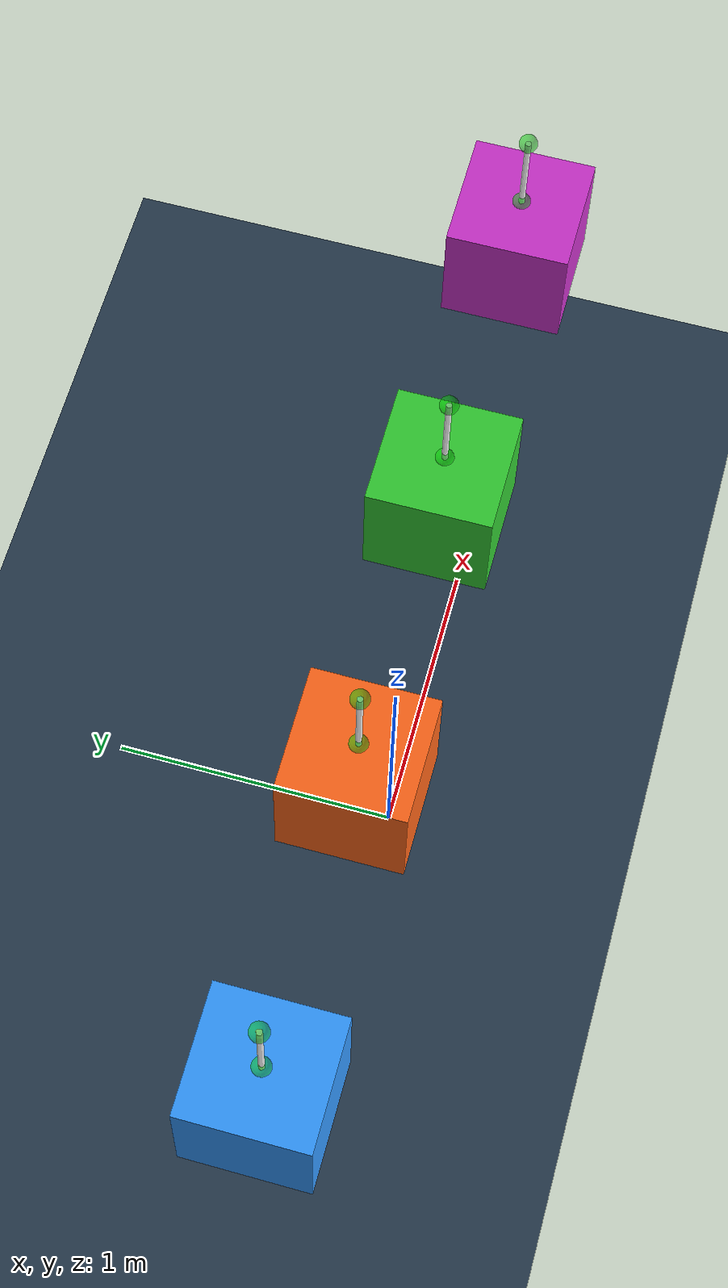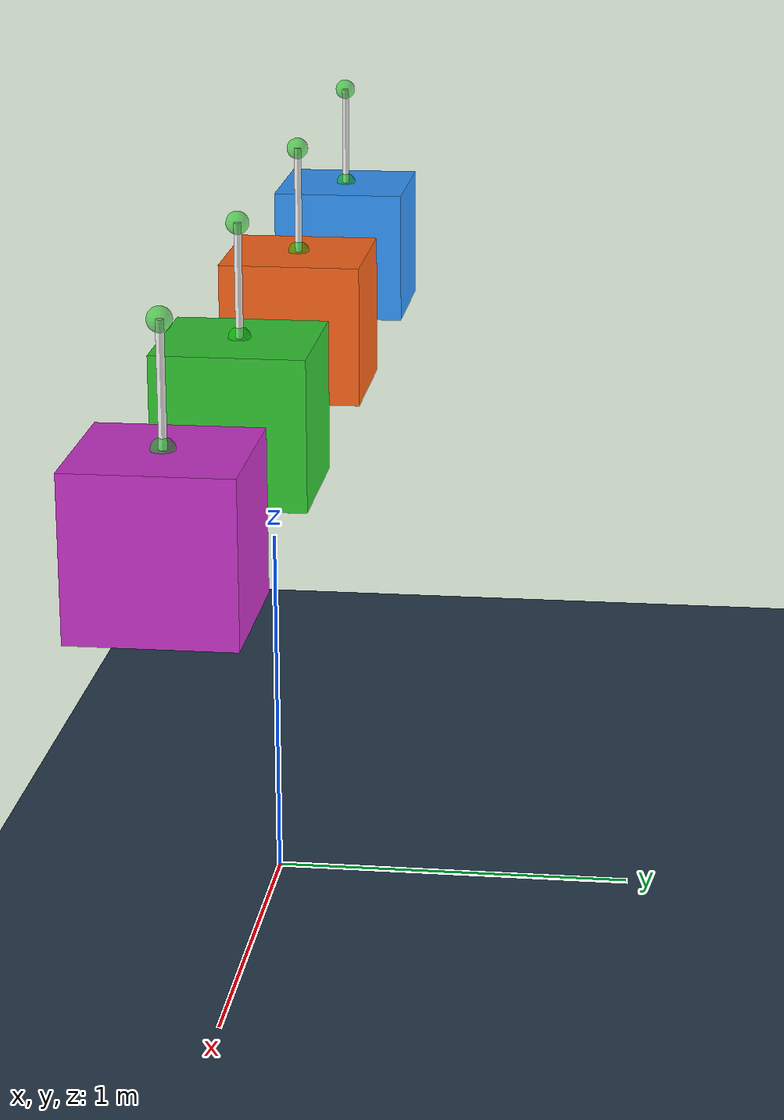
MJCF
<mujoco model="Polynomial Stiffness">

  <visual>
    <map force="0.1" zfar="30"/>
    <rgba haze="0.15 0.25 0.35 1"/>
    <global offwidth="1280" offheight="720" elevation="-10"/>
  </visual>

  <asset>
    <texture type="skybox" builtin="gradient" rgb1="0.3 0.5 0.7" rgb2="0 0 0" width="32" height="32"/>
    <texture name="grid" type="2d" builtin="checker" rgb1=".2 .3 .4" rgb2=".1 .15 .2" width="512" height="512"/>
    <material name="grid" reflectance="0.3" texture="grid" texrepeat="5 5" texuniform="true"/>
  </asset>

  <default>
    <geom condim="3"/>
    <site rgba="0 .8 0 .5" size=".03"/>
    <tendon width=".01" rgba=".9 .9 .9 1" springlength="0 .3"/>
    <default class="box">
      <geom type="box" size=".2 .2 .2" mass="5"/>
    </default>
  </default>

  <worldbody>
    <geom type="plane" size="3 3 .01" material="grid"/>
    <light directional="true" diffuse=".4 .4 .4" specular="0 0 0" pos="0 0 5" dir="0 0 -1" castshadow="false"/>
    <light directional="false" diffuse=".8 .8 .8" specular=".3 .3 .3" pos="0 -2 4" dir="0 .5 -1"/>

    <!-- anchor sites -->
    <site name="anchor_linear"    pos="-1.5 0 2"/>
    <site name="anchor_quadratic" pos="-.5  0 2"/>
    <site name="anchor_cubic"     pos=".5   0 2"/>
    <site name="anchor_combi"     pos="1.5  0 2"/>

    <body name="linear" pos="-1.5 0 1.5">
      <freejoint/>
      <geom class="box" rgba=".2 .6 1 1"/>
      <site name="hook_linear" pos="0 0 .2"/>
    </body>

    <body name="quadratic" pos="-.5 0 1.5">
      <freejoint/>
      <geom class="box" rgba="1 .4 .1 1"/>
      <site name="hook_quadratic" pos="0 0 .2"/>
    </body>

    <body name="cubic" pos=".5 0 1.5">
      <freejoint/>
      <geom class="box" rgba=".2 .8 .2 1"/>
      <site name="hook_cubic" pos="0 0 .2"/>
    </body>

    <body name="combi" pos="1.5 0 1.5">
      <freejoint/>
      <geom class="box" rgba=".8 .2 .8 1"/>
      <site name="hook_combi" pos="0 0 .2"/>
    </body>
  </worldbody>

  <tendon>
    <spatial name="linear" stiffness="100">
      <site site="anchor_linear"/>
      <site site="hook_linear"/>
    </spatial>

    <spatial name="quadratic" stiffness="0 200">
      <site site="anchor_quadratic"/>
      <site site="hook_quadratic"/>
    </spatial>

    <spatial name="cubic" stiffness="0 0 300">
      <site site="anchor_cubic"/>
      <site site="hook_cubic"/>
    </spatial>

    <spatial name="combination" stiffness="100 -400 400">
      <site site="anchor_combi"/>
      <site site="hook_combi"/>
    </spatial>
  </tendon>
</mujoco>
